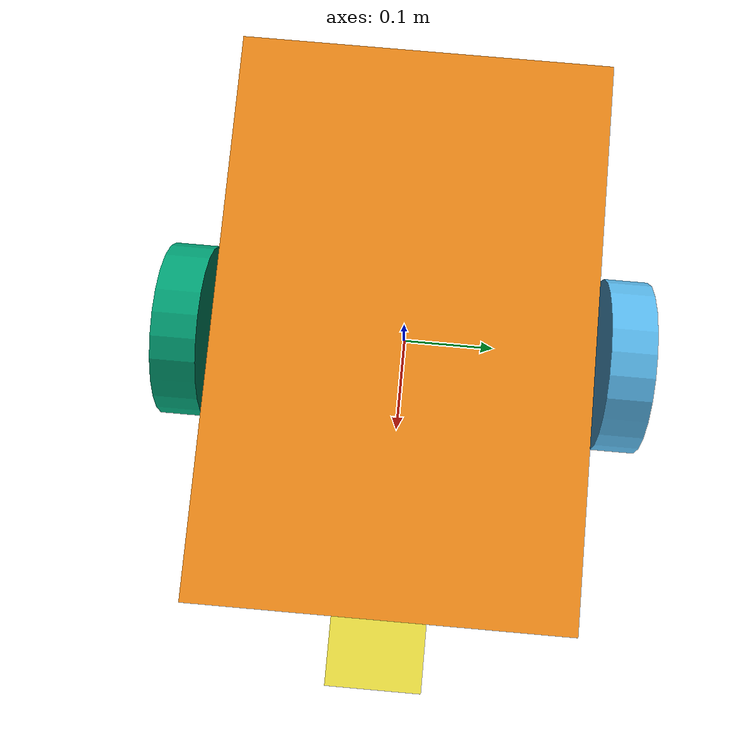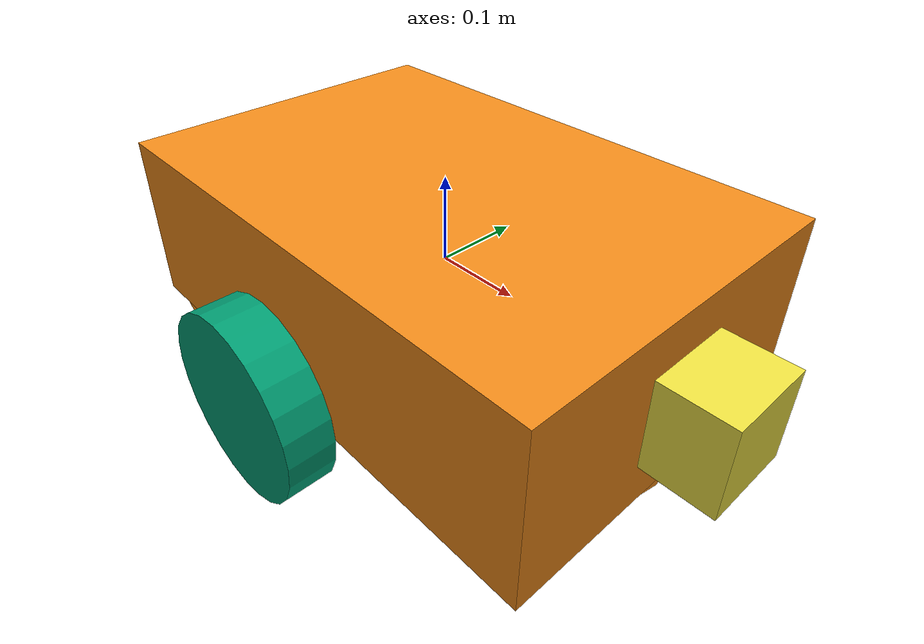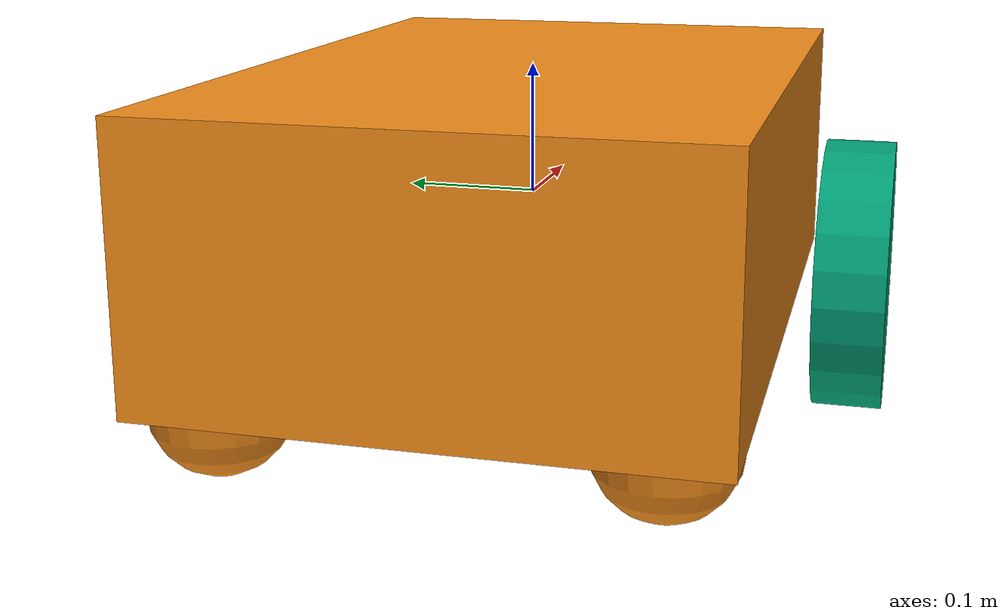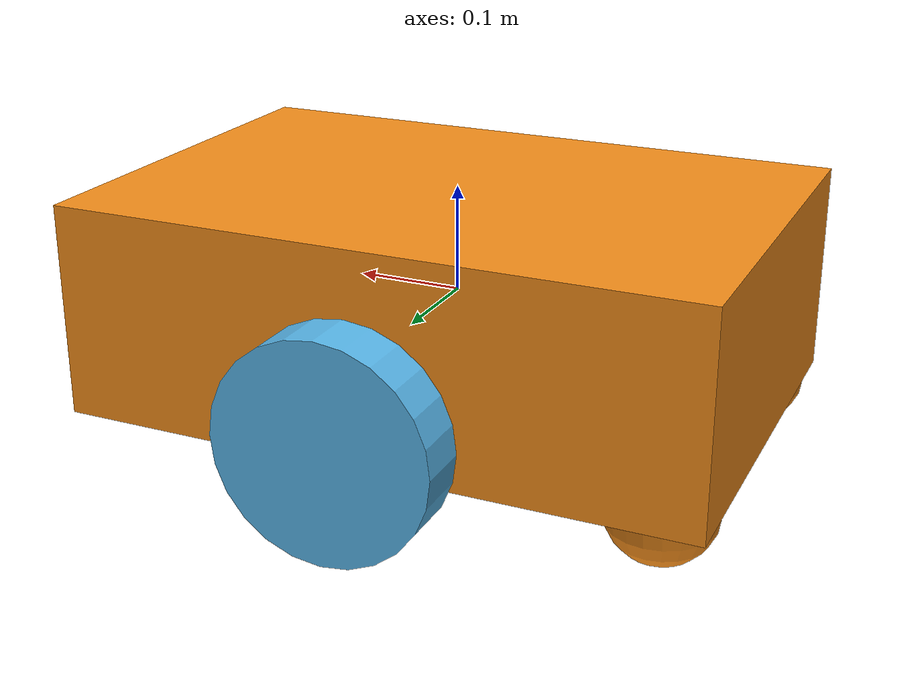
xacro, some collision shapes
<?xml version='1.0'?>

<robot name="myrobot" xmlns:xacro="http://www.ros.org/wiki/xacro">

  <xacro:include filename="$(find mybot_description)/urdf/mybot.gazebo" />
  <xacro:include filename="$(find mybot_description)/urdf/materials.xacro" />
  <xacro:include filename="$(find mybot_description)/urdf/macros.xacro" />

  <link name='base_link'>
    <pose>0 0 0.175 0 0 0</pose>

    <inertial>
      <mass value="10.0"/>
      <origin xyz="0.0 0 0.2" rpy=" 0 0 0"/>
      <inertia
          ixx="0.5" ixy="0" ixz="0"
          iyy="1.0" iyz="0"
          izz="0.1"
      />
    </inertial>

    <collision name='collision'>
      <geometry>
        <box size=".6 .4 .25"/>
      </geometry>
    </collision>

    <visual name='base_link_visual'>
      <origin xyz="0 0 0" rpy=" 0 0 0"/>
      <geometry>
        <box size=".6 .4 .2"/>
      </geometry>
    </visual>

    <collision name='caster1_collision'>
      <origin xyz="-0.25 0.15 -0.099" rpy=" 0 0 0"/>
      <geometry>
        <sphere radius="0.05"/>
      </geometry>
      <surface>
        <friction>
          <ode>
            <mu>0</mu>
            <mu2>0</mu2>
            <slip1>1.0</slip1>
            <slip2>1.0</slip2>
          </ode>
        </friction>
      </surface>
    </collision>

    <visual name='caster1_visual'>
      <origin xyz="-0.25 0.15 -0.099" rpy=" 0 0 0"/>
      <geometry>
        <sphere radius="0.05"/>
      </geometry>
    </visual>

    <collision name='caster2_collision'>
      <origin xyz="0.25 0 -0.1" rpy=" 0 0 0"/>
      <geometry>
        <sphere radius="0.05"/>
      </geometry>
      <surface>
        <friction>
          <ode>
            <mu>0</mu>
            <mu2>0</mu2>
            <slip1>1.0</slip1>
            <slip2>1.0</slip2>
          </ode>
        </friction>
      </surface>
    </collision>

    <visual name='caster2_visual'>
      <origin xyz="0.25 0 -0.1" rpy=" 0 0 0"/>
      <geometry>
        <sphere radius="0.05"/>
      </geometry>
    </visual>

    <collision name='caster3_collision'>
      <origin xyz="-0.25 -0.15 -0.099" rpy=" 0 0 0"/>
      <geometry>
        <sphere radius="0.05"/>
      </geometry>
      <surface>
        <friction>
          <ode>
            <mu>0</mu>
            <mu2>0</mu2>
            <slip1>1.0</slip1>
            <slip2>1.0</slip2>
          </ode>
        </friction>
      </surface>
    </collision>

    <visual name='caster3_visual'>
      <origin xyz="-0.25 -0.15 -0.099" rpy=" 0 0 0"/>
      <geometry>
        <sphere radius="0.05"/>
      </geometry>
    </visual>

  </link>

  <link name="left_wheel">
    <!--origin xyz="0.1 0.13 0.1" rpy="0 1.5707 1.5707"/-->
    <collision name="collision">
      <origin xyz="0 0 0" rpy="0 1.5707 1.5707"/>
      <geometry>
        <cylinder radius="0.1" length="0.05"/>
      </geometry>
    </collision>
    <visual name="left_wheel_visual">
      <origin xyz="0 0 0" rpy="0 1.5707 1.5707"/>
      <geometry>
        <cylinder radius="0.1" length="0.05"/>
      </geometry>
    </visual>
    <inertial>
      <origin xyz="0 0 0" rpy="0 1.5707 1.5707"/>
      <mass value="5"/>
      <cylinder_inertia m="5" r="0.1" h="0.05"/>
      <inertia
        ixx="1.0" ixy="0.0" ixz="0.0"
        iyy="1.0" iyz="0.0"
        izz="1.0"/>
    </inertial>
  </link>

  <link name="right_wheel">
    <!--origin xyz="0.1 -0.13 0.1" rpy="0 1.5707 1.5707"/-->
    <collision name="collision">
      <origin xyz="0 0 0" rpy="0 1.5707 1.5707"/>
      <geometry>
        <cylinder radius="0.1" length="0.05"/>
      </geometry>
    </collision>
    <visual name="right_wheel_visual">
      <origin xyz="0 0 0" rpy="0 1.5707 1.5707"/>
      <geometry>
        <cylinder radius="0.1" length="0.05"/>
      </geometry>
    </visual>
    <inertial>
      <origin xyz="0 0 0" rpy="0 1.5707 1.5707"/>
      <mass value="5"/>
      <cylinder_inertia m="5" r="0.1" h="0.05"/>
      <inertia
        ixx="1.0" ixy="0.0" ixz="0.0"
        iyy="1.0" iyz="0.0"
        izz="1.0"/>
    </inertial>
  </link>

  <joint type="continuous" name="left_wheel_hinge">
    <origin xyz="0 0.25 -0.05" rpy="0 0 0"/>
    <child link="left_wheel"/>
    <parent link="base_link"/>
    <axis xyz="0 1 0" rpy="0 0 0"/>
    <limit effort="100" velocity="100"/>
    <joint_properties damping="0.0" friction="0.0"/>
  </joint>

  <joint type="continuous" name="right_wheel_hinge">
    <origin xyz="0 -0.25 -0.05" rpy="0 0 0"/>
    <child link="right_wheel"/>
    <parent link="base_link"/>
    <axis xyz="0 1 0" rpy="0 0 0"/>
    <limit effort="100" velocity="100"/>
    <joint_properties damping="0.0" friction="0.0"/>
  </joint>

  <joint name="hokuyo_joint" type="fixed">
    <axis xyz="0 1 0" />
    <origin xyz=".325 0 0" rpy="0 0 0"/>
    <parent link="base_link"/>
    <child link="laser"/>
  </joint>

  <!-- Hokuyo Laser -->
  <link name="laser">
    <collision>
      <origin xyz="0 0 0" rpy="0 0 0"/>
      <geometry>
    <box size="0.1 0.1 0.1"/>
      </geometry>
    </collision>

    <visual>
      <origin xyz="0 0 0" rpy="0 0 0"/>
      <geometry>
        <mesh filename="package://mybot_description/meshes/hokuyo.dae"/>
      </geometry>
    </visual>

    <inertial>
      <mass value="1e-5" />
      <origin xyz="0 0 0" rpy="0 0 0"/>
      <inertia ixx="1e-6" ixy="0" ixz="0" iyy="1e-6" iyz="0" izz="1e-6" />
    </inertial>
  </link>

</robot>
